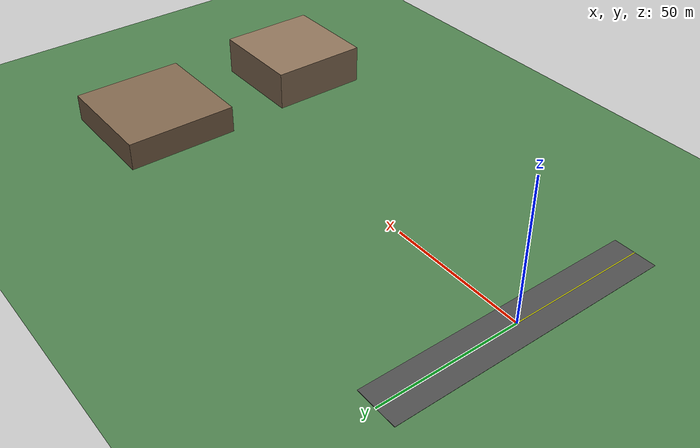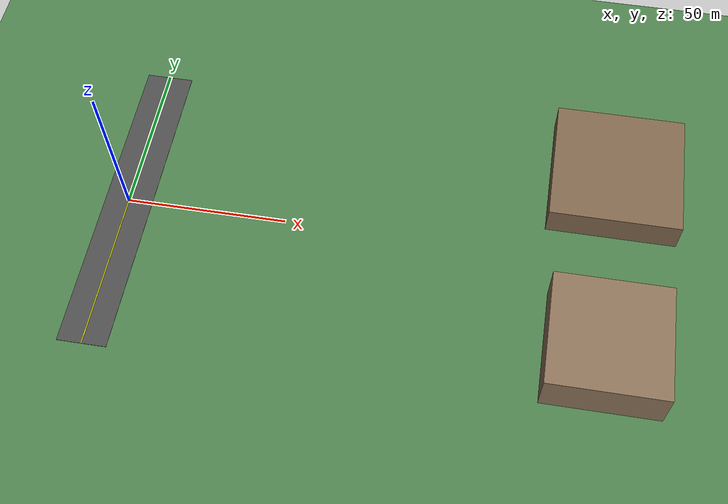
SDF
<sdf version="1.9">
 <world name="plane_lidar_runway">
  <physics name="1ms" type="ignore">
   <max_step_size>0.001</max_step_size>
   <real_time_factor>1</real_time_factor>
  </physics>
  <plugin filename="gz-sim-physics-system" name="gz::sim::systems::Physics"/>
  <plugin filename="gz-sim-user-commands-system" name="gz::sim::systems::UserCommands"/>
  <plugin filename="gz-sim-scene-broadcaster-system" name="gz::sim::systems::SceneBroadcaster"/>
  <plugin filename="gz-sim-imu-system" name="gz::sim::systems::Imu"/>
  <plugin filename="gz-sim-navsat-system" name="gz::sim::systems::NavSat"/>
  <plugin filename="gz-sim-sensors-system" name="gz::sim::systems::Sensors">
   <render_engine>ogre2</render_engine>
  </plugin>
  <scene><ambient>1.0 1.0 1.0</ambient><background>0.8 0.8 0.8</background></scene>
  <spherical_coordinates>
   <latitude_deg>-35.363262</latitude_deg>
   <longitude_deg>149.165237</longitude_deg>
   <elevation>584</elevation>
   <heading_deg>0</heading_deg>
   <surface_model>EARTH_WGS84</surface_model>
  </spherical_coordinates>
  <light type="directional" name="sun">
   <pose>0 0 10 0 0 0</pose>
   <diffuse>0.8 0.8 0.8 1</diffuse>
   <specular>0.8 0.8 0.8 1</specular>
   <attenuation>
    <range>1000</range>
    <constant>0.9</constant>
    <linear>0.01</linear>
    <quadratic>0.001</quadratic>
   </attenuation>
   <direction>-0.5 0.1 -0.9</direction>
  </light>
  <model name="ground_plane">
   <static>true</static>
   <link name="link">
    <collision name="collision">
     <geometry><plane><normal>0 0 1</normal><size>5000 5000</size></plane></geometry>
     <surface><friction><ode><mu>100</mu><mu2>50</mu2></ode></friction></surface>
    </collision>
    <visual name="visual">
     <geometry><plane><normal>0 0 1</normal><size>5000 5000</size></plane></geometry>
     <material>
      <ambient>0.3 0.5 0.3 1</ambient>
      <diffuse>0.3 0.5 0.3 1</diffuse>
      <specular>0.1 0.1 0.1 1</specular>
     </material>
    </visual>
   </link>
  </model>
  <model name="runway">
   <static>true</static>
   <link name="link">
    <pose>0 0 0.01 0 0 0</pose>
    <collision name="collision"><geometry><box><size>15 100 0.1</size></box></geometry></collision>
    <visual name="visual">
     <geometry><box><size>15 100 0.1</size></box></geometry>
     <material>
      <ambient>0.2 0.2 0.2 1</ambient>
      <diffuse>0.3 0.3 0.3 1</diffuse>
      <specular>0.1 0.1 0.1 1</specular>
     </material>
    </visual>
    <visual name="centerline">
     <pose>0 0 0.06 0 0 0</pose>
     <geometry><box><size>0.3 100 0.01</size></box></geometry>
     <material><ambient>1 1 0 1</ambient><diffuse>1 1 0 1</diffuse></material>
    </visual>
   </link>
  </model>
  <model name="terrain_hill_1">
   <static>true</static>
   <pose>150 30 5 0 0 0</pose>
   <link name="link">
    <collision name="collision"><geometry><box><size>40 40 10</size></box></geometry></collision>
    <visual name="visual">
     <geometry><box><size>40 40 10</size></box></geometry>
     <material><ambient>0.4 0.3 0.2 1</ambient><diffuse>0.5 0.4 0.3 1</diffuse></material>
    </visual>
   </link>
  </model>
  <model name="terrain_hill_2">
   <static>true</static>
   <pose>150 -30 7 0 0 0</pose>
   <link name="link">
    <collision name="collision"><geometry><box><size>35 35 14</size></box></geometry></collision>
    <visual name="visual">
     <geometry><box><size>35 35 14</size></box></geometry>
     <material><ambient>0.45 0.35 0.25 1</ambient><diffuse>0.55 0.45 0.35 1</diffuse></material>
    </visual>
   </link>
  </model>
  <model name="axes">
   <static>1</static>
   <link name="link">
    <visual name="x_axis">
     <cast_shadows>0</cast_shadows>
     <pose>5 0 0.1 0 0 0</pose>
     <geometry><box><size>10 0.05 0.05</size></box></geometry>
     <material><ambient>1 0 0 1</ambient><diffuse>1 0 0 1</diffuse><emissive>1 0 0 1</emissive></material>
    </visual>
    <visual name="y_axis">
     <cast_shadows>0</cast_shadows>
     <pose>0 5 0.1 0 0 0</pose>
     <geometry><box><size>0.05 10 0.05</size></box></geometry>
     <material><ambient>0 1 0 1</ambient><diffuse>0 1 0 1</diffuse><emissive>0 1 0 1</emissive></material>
    </visual>
    <visual name="z_axis">
     <cast_shadows>0</cast_shadows>
     <pose>0 0 5.1 0 0 0</pose>
     <geometry><box><size>0.05 0.05 10</size></box></geometry>
     <material><ambient>0 0 1 1</ambient><diffuse>0 0 1 1</diffuse><emissive>0 0 1 1</emissive></material>
    </visual>
   </link>
  </model>
 </world>
</sdf>
